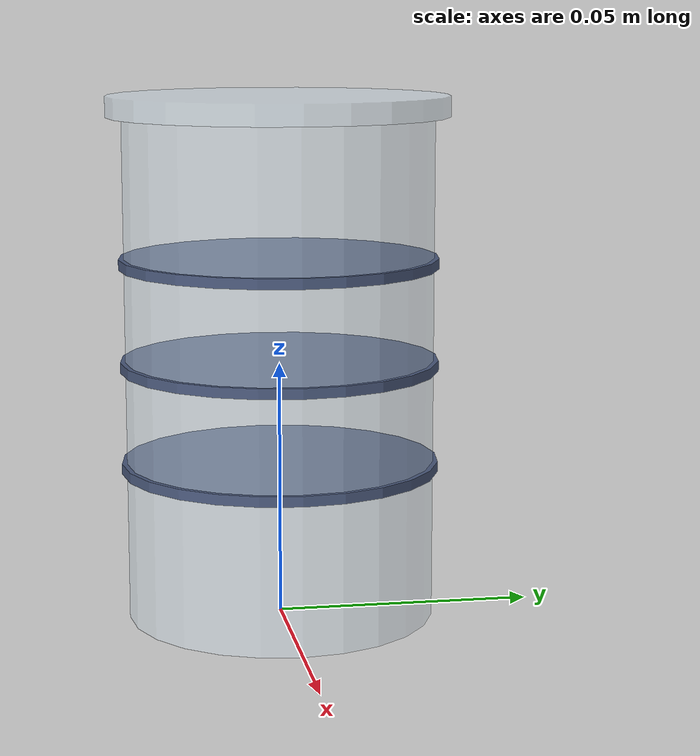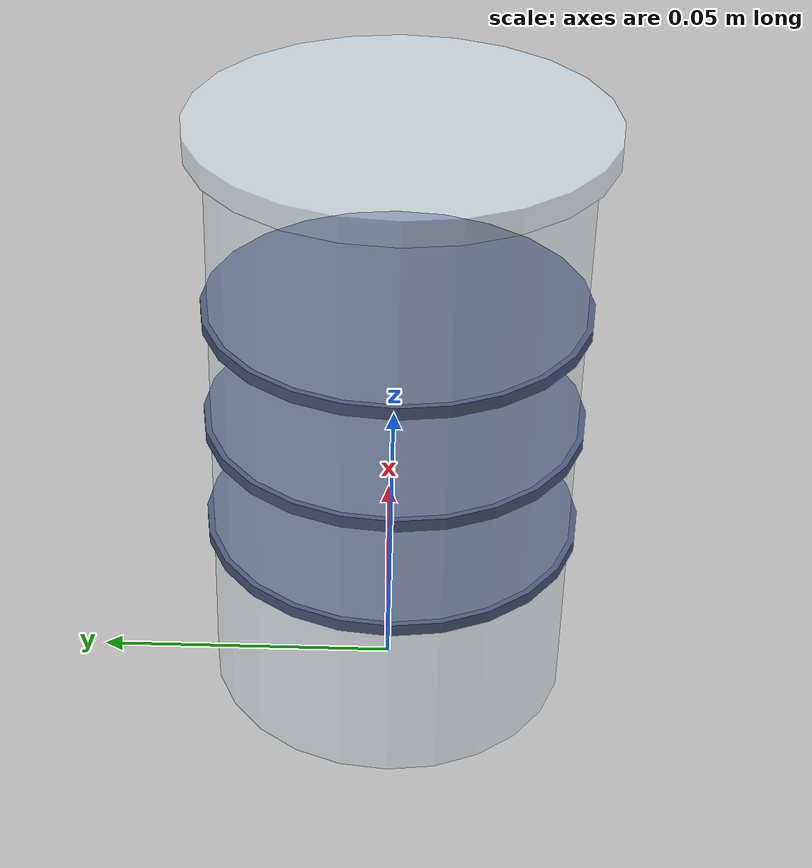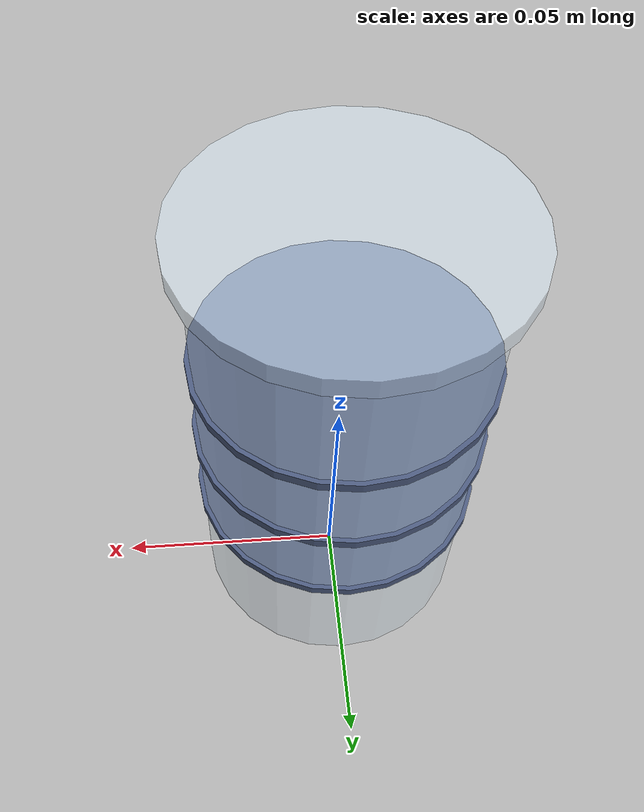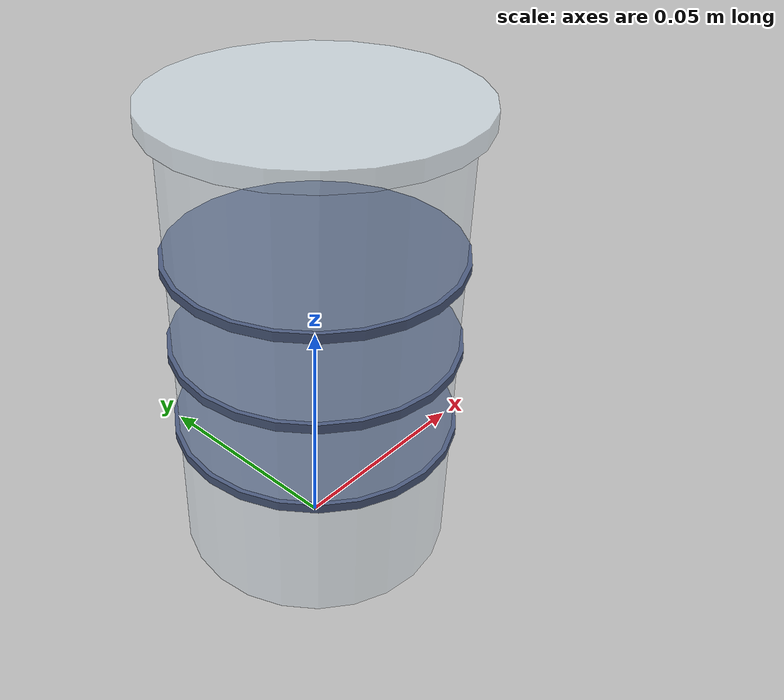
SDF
<?xml version="1.0"?>
<sdf version="1.6">
  <!-- 烧杯(可抓取):真玻璃材质开口圆柱,直径 0.06 < 夹爪开度,动态模型。
       玻璃:transparency 0.35 + double_sided + 高 specular/shininess;
       管口 + 3 条刻度环 + 内部淡蓝液体,高保真。 -->
  <model name="beaker">
    <link name="link">
      <inertial>
        <mass>0.05</mass>
        <inertia>
          <ixx>5.29e-5</ixx><ixy>0</ixy><ixz>0</ixz>
          <iyy>5.29e-5</iyy><iyz>0</iyz><izz>2.25e-5</izz>
        </inertia>
      </inertial>

      <collision name="collision">
        <pose>0 0 0.05 0 0 0</pose>
        <geometry>
          <cylinder>
            <radius>0.030</radius>
            <length>0.10</length>
          </cylinder>
        </geometry>
        <surface>
          <friction><ode><mu>1.0</mu><mu2>1.0</mu2></ode></friction>
          <contact>
            <ode>
              <kp>1e6</kp>
              <kd>1.0</kd>
              <min_depth>0.001</min_depth>
              <max_vel>0.01</max_vel>
            </ode>
          </contact>
        </surface>
      </collision>

      <!-- 玻璃杯身 -->
      <visual name="visual">
        <transparency>0.35</transparency>
        <pose>0 0 0.05 0 0 0</pose>
        <geometry>
          <cylinder>
            <radius>0.030</radius>
            <length>0.10</length>
          </cylinder>
        </geometry>
        <material>
          <ambient>0.75 0.88 0.95 0.4</ambient>
          <diffuse>0.88 0.95 1.0 0.4</diffuse>
          <specular>1.0 1.0 1.0 1.0</specular>
          <shininess>128</shininess>
          <double_sided>true</double_sided>
        </material>
      </visual>

      <!-- 杯口(视觉厚边) -->
      <visual name="visual_rim">
        <transparency>0.25</transparency>
        <pose>0 0 0.10 0 0 0</pose>
        <geometry>
          <cylinder>
            <radius>0.033</radius>
            <length>0.004</length>
          </cylinder>
        </geometry>
        <material>
          <ambient>0.75 0.88 0.95 0.5</ambient>
          <diffuse>0.88 0.95 1.0 0.5</diffuse>
          <specular>1.0 1.0 1.0 1.0</specular>
          <shininess>128</shininess>
          <double_sided>true</double_sided>
        </material>
      </visual>

      <!-- 3 条刻度环(视觉) -->
      <visual name="visual_scale_1">
        <pose>0 0 0.03 0 0 0</pose>
        <geometry>
          <cylinder>
            <radius>0.031</radius>
            <length>0.002</length>
          </cylinder>
        </geometry>
        <material>
          <ambient>0.20 0.25 0.35 1</ambient>
          <diffuse>0.30 0.36 0.50 1</diffuse>
        </material>
      </visual>
      <visual name="visual_scale_2">
        <pose>0 0 0.05 0 0 0</pose>
        <geometry>
          <cylinder>
            <radius>0.031</radius>
            <length>0.002</length>
          </cylinder>
        </geometry>
        <material>
          <ambient>0.20 0.25 0.35 1</ambient>
          <diffuse>0.30 0.36 0.50 1</diffuse>
        </material>
      </visual>
      <visual name="visual_scale_3">
        <pose>0 0 0.07 0 0 0</pose>
        <geometry>
          <cylinder>
            <radius>0.031</radius>
            <length>0.002</length>
          </cylinder>
        </geometry>
        <material>
          <ambient>0.20 0.25 0.35 1</ambient>
          <diffuse>0.30 0.36 0.50 1</diffuse>
        </material>
      </visual>

      <!-- 内部淡蓝液体(视觉) -->
      <visual name="visual_liquid">
        <transparency>0.20</transparency>
        <pose>0 0 0.03 0 0 0</pose>
        <geometry>
          <cylinder>
            <radius>0.024</radius>
            <length>0.06</length>
          </cylinder>
        </geometry>
        <material>
          <ambient>0.40 0.65 0.85 1</ambient>
          <diffuse>0.60 0.80 0.95 1</diffuse>
          <specular>0.30 0.30 0.30 1</specular>
          <shininess>32</shininess>
        </material>
      </visual>
    </link>
  </model>
</sdf>
